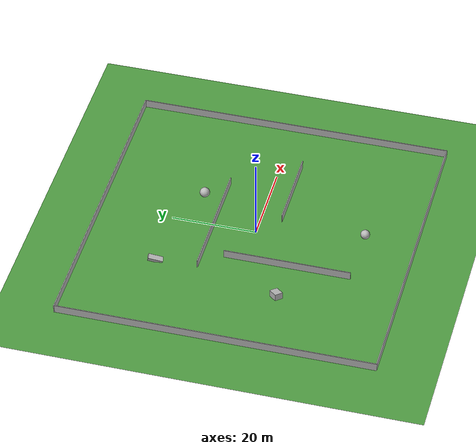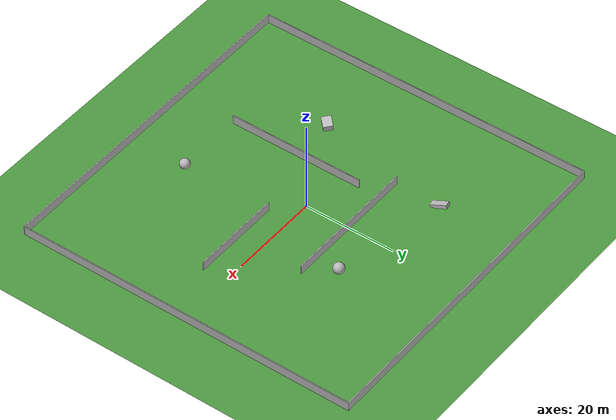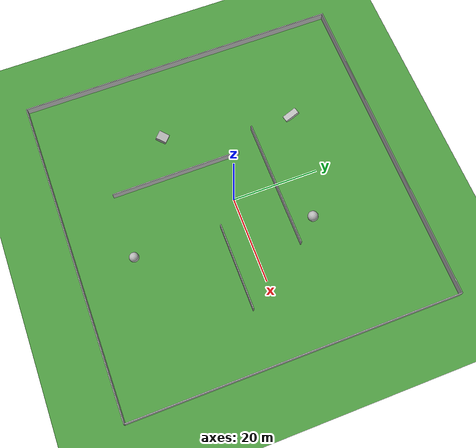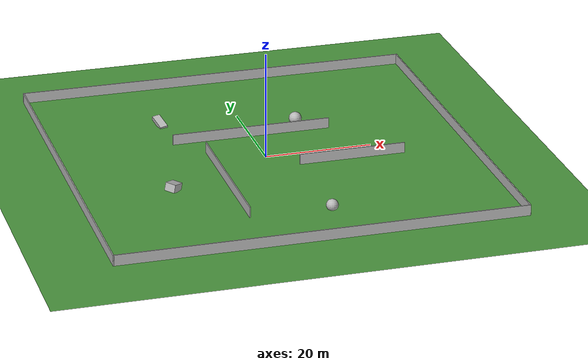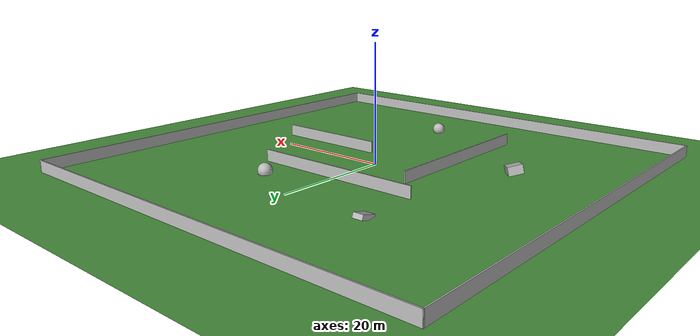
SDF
<?xml version="1.0" ?>
<sdf version="1.6">
  <world name="castle_arena">
    <!-- Global light source -->
    <include>
      <uri>model://sun</uri>
    </include>

    <!-- Grass ground plane -->
    <model name='ground_plane'>
      <static>true</static>
      <link name='link'>
        <collision name='collision'>
          <geometry>
            <plane>
              <normal>0 0 1</normal>
              <size>75 75</size>
            </plane>
          </geometry>
        </collision>
        <visual name='visual'>
          <geometry>
            <plane>
              <normal>0 0 1</normal>
              <size>75 75</size>
            </plane>
          </geometry>
          <material><script><uri>file://media/materials/scripts/gazebo.material</uri><name>Gazebo/Grass</name></script></material>
        </visual>
      </link>
    </model>

    <!-- Castle Boundary Walls -->
    <model name='castle_wall_north'>
      <static>true</static>
      <pose frame=''>0 37.4 1.0 0 0 0</pose> <!-- Positioned just inside 75x75 edge, height 2m -->
      <link name='link'>
        <collision name='collision'>
          <geometry><box><size>75 0.2 2</size></box></geometry>
        </collision>
        <visual name='visual'>
          <geometry><box><size>75 0.2 2</size></box></geometry>
          <material><script><uri>file://media/materials/scripts/gazebo.material</uri><name>Gazebo/BumpyBrick</name></script></material>
        </visual>
      </link>
    </model>
    <model name='castle_wall_south'>
      <static>true</static>
      <pose frame=''>0 -37.4 1.0 0 0 0</pose>
      <link name='link'>
        <collision name='collision'>
          <geometry><box><size>75 0.2 2</size></box></geometry>
        </collision>
        <visual name='visual'>
          <geometry><box><size>75 0.2 2</size></box></geometry>
          <material><script><uri>file://media/materials/scripts/gazebo.material</uri><name>Gazebo/BumpyBrick</name></script></material>
        </visual>
      </link>
    </model>
    <model name='castle_wall_east'>
      <static>true</static>
      <pose frame=''>37.4 0 1.0 0 0 1.5707</pose> <!-- Rotated 90 deg -->
      <link name='link'>
        <collision name='collision'>
          <geometry><box><size>75 0.2 2</size></box></geometry> <!-- Length along new Y (world X) -->
        </collision>
        <visual name='visual'>
          <geometry><box><size>75 0.2 2</size></box></geometry>
          <material><script><uri>file://media/materials/scripts/gazebo.material</uri><name>Gazebo/BumpyBrick</name></script></material>
        </visual>
      </link>
    </model>
    <model name='castle_wall_west'>
      <static>true</static>
      <pose frame=''>-37.4 0 1.0 0 0 1.5707</pose> <!-- Rotated 90 deg -->
      <link name='link'>
        <collision name='collision'>
          <geometry><box><size>75 0.2 2</size></box></geometry> <!-- Length along new Y (world X) -->
        </collision>
        <visual name='visual'>
          <geometry><box><size>75 0.2 2</size></box></geometry>
          <material><script><uri>file://media/materials/scripts/gazebo.material</uri><name>Gazebo/BumpyBrick</name></script></material>
        </visual>
      </link>
    </model>

    <!-- *** ADDED INTERNAL WALLS *** -->
    <model name='internal_wall_1'>
      <static>true</static>
      <pose frame=''>0 10 1.0 0 0 0</pose>
      <link name='link'>
        <collision name='collision'>
          <geometry><box><size>30 0.2 2</size></box></geometry>
        </collision>
        <visual name='visual'>
          <geometry><box><size>30 0.2 2</size></box></geometry>
          <material><script><uri>file://media/materials/scripts/gazebo.material</uri><name>Gazebo/BumpyBrick</name></script></material>
        </visual>
      </link>
    </model>
    <model name='internal_wall_2'>
      <static>true</static>
      <pose frame=''>-10 -10 1.0 0 0 1.5707</pose> <!-- Rotated -->
      <link name='link'>
        <collision name='collision'>
          <geometry><box><size>30 0.2 2</size></box></geometry>
        </collision>
        <visual name='visual'>
          <geometry><box><size>30 0.2 2</size></box></geometry>
          <material><script><uri>file://media/materials/scripts/gazebo.material</uri><name>Gazebo/BumpyBrick</name></script></material>
        </visual>
      </link>
    </model>
    <model name='internal_wall_3'>
      <static>true</static>
      <pose frame=''>15 -5 1.0 0 0 0</pose>
      <link name='link'>
        <collision name='collision'>
          <geometry><box><size>20 0.2 2</size></box></geometry>
        </collision>
        <visual name='visual'>
          <geometry><box><size>20 0.2 2</size></box></geometry>
          <material><script><uri>file://media/materials/scripts/gazebo.material</uri><name>Gazebo/BumpyBrick</name></script></material>
        </visual>
      </link>
    </model>
    <!-- *** END ADDED INTERNAL WALLS *** -->

    <!-- Rock Obstacles -->
    <model name='rock_1'>
        <static>true</static>
        <pose frame=''>10 15 0.5 0 0 0.4</pose>
        <link name='link'>
          <collision name='collision'>
            <geometry><sphere><radius>1.2</radius></sphere></geometry>
          </collision>
          <visual name='visual'>
            <geometry><sphere><radius>1.2</radius></sphere></geometry>
            <material><script><uri>file://media/materials/scripts/gazebo.material</uri><name>Gazebo/Rock</name></script></material>
          </visual>
        </link>
      </model>
    <model name='rock_2'>
        <static>true</static>
        <pose frame=''>-20 -10 0.75 0.1 0.2 0.8</pose>
        <link name='link'>
          <collision name='collision'>
            <geometry><box><size>2.5 2 1.5</size></box></geometry>
          </collision>
          <visual name='visual'>
            <geometry><box><size>2.5 2 1.5</size></box></geometry>
            <material><script><uri>file://media/materials/scripts/gazebo.material</uri><name>Gazebo/Rock</name></script></material>
          </visual>
        </link>
      </model>
    <model name='rock_3'>
        <static>true</static>
        <pose frame=''>5 -25 0.6 0 0 0</pose>
        <link name='link'>
          <collision name='collision'>
            <geometry><sphere><radius>1.1</radius></sphere></geometry>
          </collision>
          <visual name='visual'>
            <geometry><sphere><radius>1.1</radius></sphere></geometry>
            <material><script><uri>file://media/materials/scripts/gazebo.material</uri><name>Gazebo/Rock</name></script></material>
          </visual>
        </link>
      </model>
    <model name='rock_4'>
        <static>true</static>
        <pose frame=''>-15 20 0.4 0.3 -0.1 0.2</pose>
        <link name='link'>
          <collision name='collision'>
            <geometry><box><size>1.5 3.5 0.8</size></box></geometry>
          </collision>
          <visual name='visual'>
            <geometry><box><size>1.5 3.5 0.8</size></box></geometry>
            <material><script><uri>file://media/materials/scripts/gazebo.material</uri><name>Gazebo/Rock</name></script></material>
          </visual>
        </link>
      </model>

    <!-- Golden Apple (Static Position for now) -->
    <model name='apple_of_eden'>
        <static>true</static>
        <pose frame=''>0 0 0.25 0 0 0</pose> <!-- Centered -->
        <link name='link'>
          <collision name='collision'>
            <geometry>
              <sphere><radius>0.25</radius></sphere>
            </geometry>
          </collision>
          <visual name='visual'>
            <geometry>
              <sphere><radius>0.25</radius></sphere>
            </geometry>
            <material>
              <script><name>Gazebo/Gold</name></script> <!-- Using basic gold -->
              <ambient>1 0.9 0 1</ambient>
              <diffuse>1 0.9 0 1</diffuse>
              <specular>0.5 0.5 0.5 1</specular>
              <emissive>0.8 0.7 0 1</emissive> <!-- Make it glow slightly -->
            </material>
          </visual>
        </link>
      </model>

    <!-- Physics settings -->
    <physics name='default_physics' default='0' type='ode'>
      <real_time_update_rate>1000.0</real_time_update_rate>
      <max_step_size>0.001</max_step_size>
      <real_time_factor>1</real_time_factor>
      <ode>
        <solver>
          <type>quick</type>
          <iters>150</iters>
          <precon_iters>0</precon_iters>
          <sor>1.400000</sor>
        </solver>
        <constraints>
          <cfm>1.000000e-05</cfm>
          <erp>0.200000</erp>
          <contact_max_correcting_vel>2000.000000</contact_max_correcting_vel>
          <contact_surface_layer>0.01000</contact_surface_layer>
        </constraints>
      </ode>
    </physics>

    <!-- Scene settings -->
    <scene>
      <ambient>0.4 0.4 0.4 1</ambient>
      <background>0.7 0.7 0.7 1</background>
      <shadows>true</shadows>
    </scene>
  </world>
</sdf>
